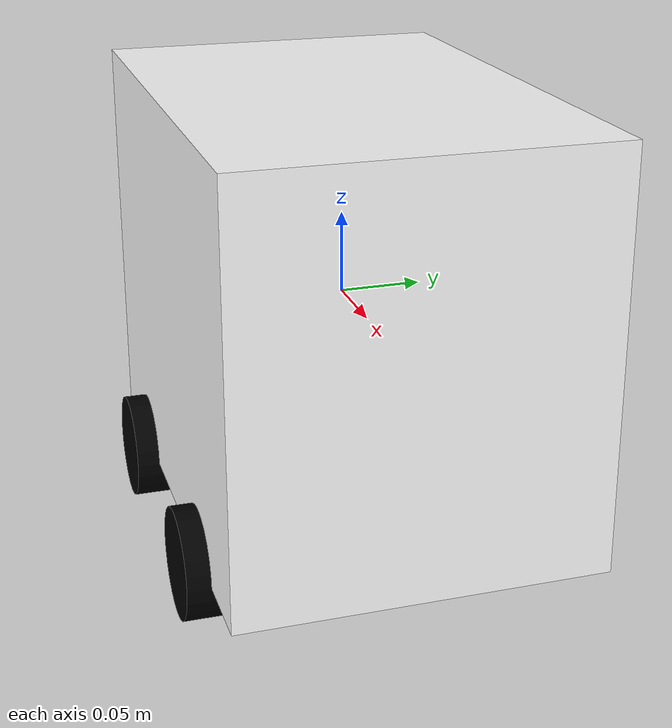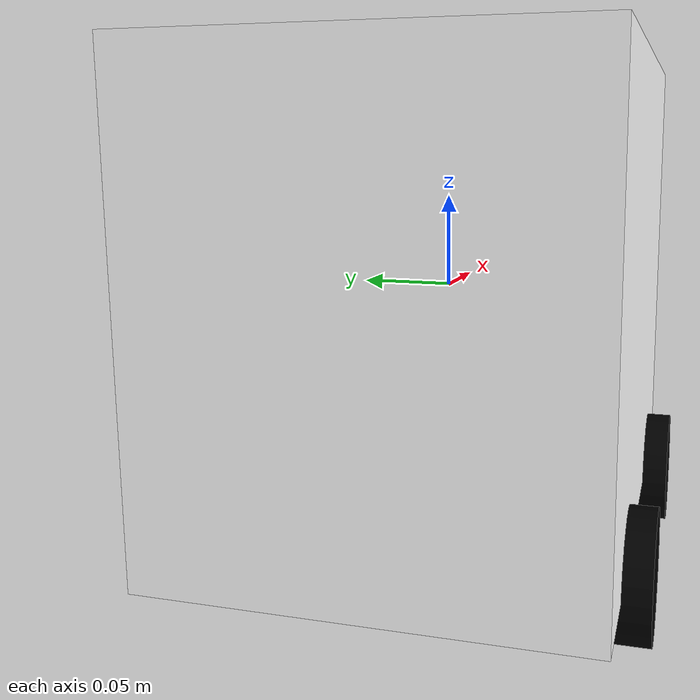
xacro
<?xml version="1.0"?>
<robot name="limo" xmlns:xacro="http://www.ros.org/wiki/xacro">

  <xacro:include filename="limo.xacro"/>

  <material name="white">
    <color rgba="1 1 1 1" />
  </material>

  <material name="black">
  <color rgba="0 0 0 1" />
  </material>

  <link name="base_link">
    <visual>
      <geometry>
        <box size="${length} ${width} ${height}" />
      </geometry>
      <origin xyz="0 0 0" rpy="0 0 0" />
      <material name="white" />
    </visual>
  </link>

  <xacro:wheel name="front_left_wheel" x="${wheelbase/2}" y="${width/2}" />
  <xacro:wheel name="front_right_wheel" x="${wheelbase/2}" y="${-width/2}" />
  <xacro:wheel name="rear_left_wheel" x="${-wheelbase/2}" y="${width/2}" />
  <xacro:wheel name="rear_right_wheel" x="${-wheelbase/2}" y="${-width/2}" />

</robot>

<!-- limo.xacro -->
<robot xmlns:xacro="http://www.ros.org/wiki/xacro">
    <xacro:property name="length" value="0.322" />
    <xacro:property name="width" value="0.22" />
    <xacro:property name="height" value="0.251" />
    <xacro:property name="wheelbase" value="0.16" />
    <xacro:property name="mass" value="8.0" />
    <xacro:property name="wheel_radius" value="0.033" />
    <xacro:property name="wheel_width" value="0.028" />

    <xacro:macro name="wheel" params="name x y">
        <link name="${name}_link">
            <visual>
                <geometry>
                    <cylinder radius="${wheel_radius}" length="${wheel_width}" />
                </geometry>
                <origin xyz="0 0 0" rpy="0 0 0" />
                <material name="black" />
            </visual>
        </link>

        <joint name="base_${name}" type="continuous">
            <parent link="base_link" />
            <child link="${name}_link" />
            <origin xyz="${x} ${y} ${-height/2}" rpy="1.57 0 0" />
            <axis xyz="0 0 1" />
        </joint>
    </xacro:macro>

</robot>
